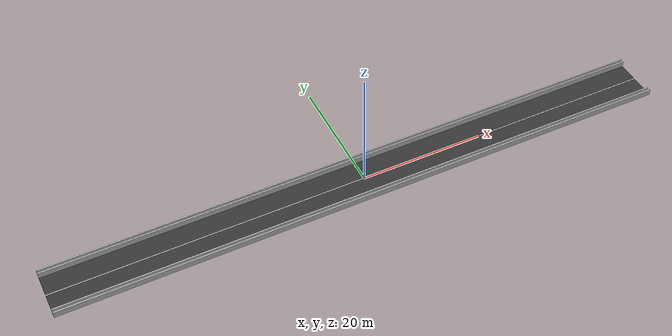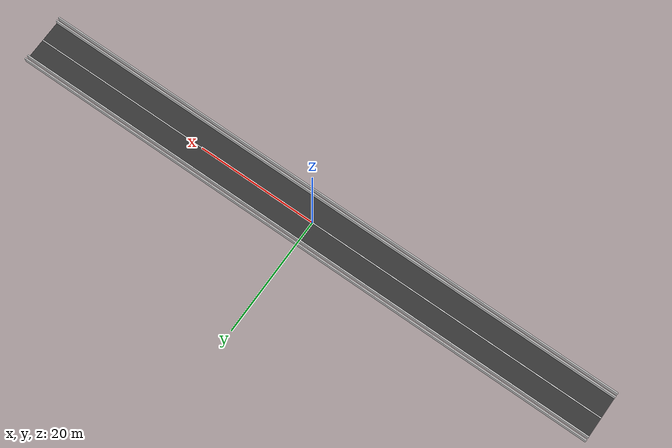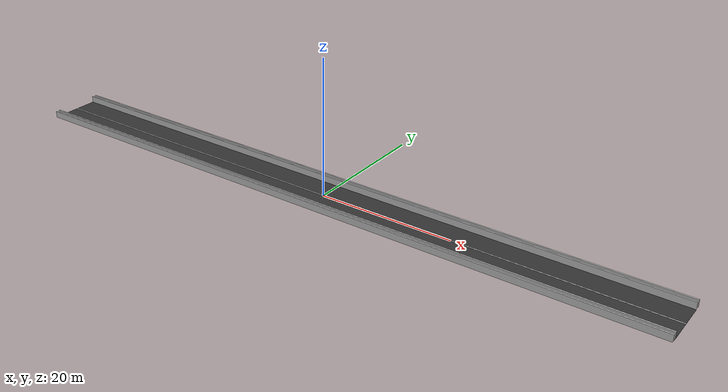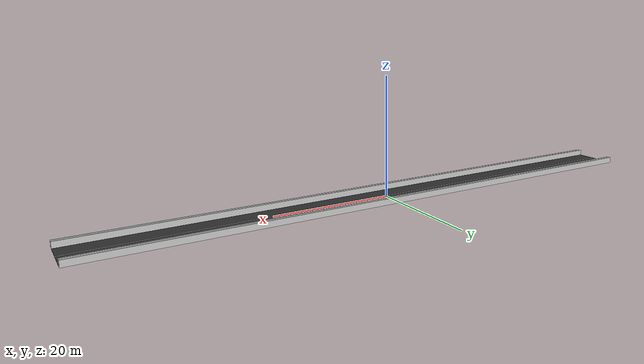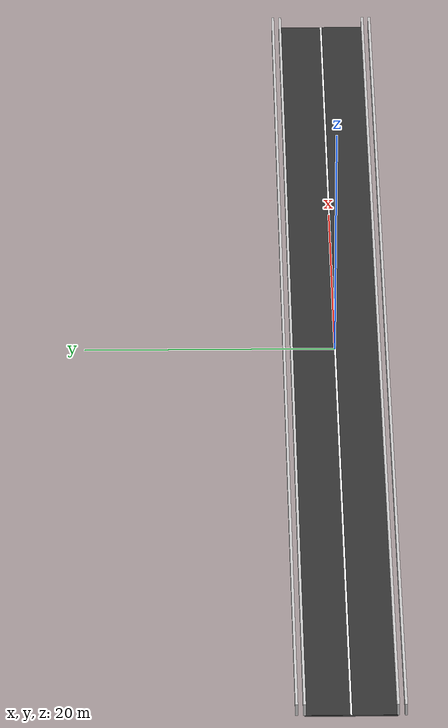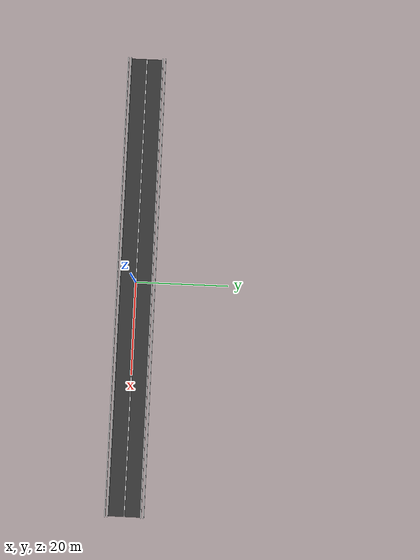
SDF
<?xml version="1.0"?>
<sdf version="1.6">
  <world name="road">
    <include>
      <uri>model://ground_plane</uri>
    </include>

    <include>
      <uri>model://sun</uri>
    </include>

    <scene>
      <ambient>0.4 0.4 0.4 1</ambient>
      <background>0.7 0.7 0.7 1</background>
      <shadows>true</shadows>
    </scene>

    <physics type="ode">
      <max_step_size>0.001</max_step_size>
      <real_time_factor>1</real_time_factor>
      <real_time_update_rate>1000</real_time_update_rate>
      <ode>
        <solver>
          <type>quick</type>
          <iters>150</iters>
          <precon_iters>0</precon_iters>
          <sor>1.400000</sor>
          <use_dynamic_moi_rescaling>1</use_dynamic_moi_rescaling>
        </solver>
        <constraints>
          <cfm>0.00001</cfm>
          <erp>0.2</erp>
          <contact_max_correcting_vel>2000.000000</contact_max_correcting_vel>
          <contact_surface_layer>0.01000</contact_surface_layer>
        </constraints>
      </ode>
    </physics>

    <!-- Road -->
    <model name="road">
      <static>true</static>
      <link name="link">
        <collision name="collision">
          <geometry>
            <plane>
              <normal>0 0 1</normal>
              <size>100 7</size>
            </plane>
          </geometry>
          <surface>
            <friction>
              <ode>
                <mu>100</mu>
                <mu2>50</mu2>
              </ode>
            </friction>
          </surface>
        </collision>
        <visual name="visual">
          <geometry>
            <plane>
              <normal>0 0 1</normal>
              <size>100 7</size>
            </plane>
          </geometry>
          <material>
            <ambient>0.2 0.2 0.2 1</ambient>
            <diffuse>0.2 0.2 0.2 1</diffuse>
          </material>
        </visual>
      </link>
    </model>

    <!-- Walls -->
    <model name="wall_right">
      <static>true</static>
      <pose>0 3.5 0.5 0 0 0</pose>
      <link name="link">
        <collision name="collision">
          <geometry>
            <box>
              <size>100 0.2 1</size>
            </box>
          </geometry>
        </collision>
        <visual name="visual">
          <geometry>
            <box>
              <size>100 0.2 1</size>
            </box>
          </geometry>
          <material>
            <ambient>0.8 0.8 0.8 1</ambient>
            <diffuse>0.8 0.8 0.8 1</diffuse>
          </material>
        </visual>
      </link>
    </model>

    <model name="wall_left">
      <static>true</static>
      <pose>0 -3.5 0.5 0 0 0</pose>
      <link name="link">
        <collision name="collision">
          <geometry>
            <box>
              <size>100 0.2 1</size>
            </box>
          </geometry>
        </collision>
        <visual name="visual">
          <geometry>
            <box>
              <size>100 0.2 1</size>
            </box>
          </geometry>
          <material>
            <ambient>0.8 0.8 0.8 1</ambient>
            <diffuse>0.8 0.8 0.8 1</diffuse>
          </material>
        </visual>
      </link>
    </model>

    <model name="road">
      <static>true</static>
      <pose>0 0 0.01 0 0 0</pose>
      <link name="link">
        <collision name="collision">
          <geometry>
            <box>
              <size>100 7 0.02</size>
            </box>
          </geometry>
        </collision>
        <visual name="visual">
          <geometry>
            <box>
              <size>100 7 0.02</size>
            </box>
          </geometry>
          <material>
            <ambient>0.2 0.2 0.2 1</ambient>
            <diffuse>0.2 0.2 0.2 1</diffuse>
            <specular>0.01 0.01 0.01 1</specular>
          </material>
        </visual>
      </link>
    </model>

    <model name="center_line">
      <static>true</static>
      <pose>0 0 0.021 0 0 0</pose>
      <link name="link">
        <visual name="visual">
          <geometry>
            <box>
              <size>100 0.15 0.002</size>
            </box>
          </geometry>
          <material>
            <ambient>1 1 1 1</ambient>
            <diffuse>1 1 1 1</diffuse>
            <specular>0.1 0.1 0.1 1</specular>
          </material>
        </visual>
      </link>
    </model>

    <model name="wall_right">
      <static>true</static>
      <pose>0 4.1 0.5 0 0 0</pose>
      <link name="link">
        <collision name="collision">
          <geometry>
            <box>
              <size>100 0.2 1</size>
            </box>
          </geometry>
        </collision>
        <visual name="visual">
          <geometry>
            <box>
              <size>100 0.2 1</size>
            </box>
          </geometry>
          <material>
            <ambient>0.8 0.8 0.8 1</ambient>
            <diffuse>0.8 0.8 0.8 1</diffuse>
            <specular>0.1 0.1 0.1 1</specular>
          </material>
        </visual>
      </link>
    </model>

    <model name="wall_left">
      <static>true</static>
      <pose>0 -4.1 0.5 0 0 0</pose>
      <link name="link">
        <collision name="collision">
          <geometry>
            <box>
              <size>100 0.2 1</size>
            </box>
          </geometry>
        </collision>
        <visual name="visual">
          <geometry>
            <box>
              <size>100 0.2 1</size>
            </box>
          </geometry>
          <material>
            <ambient>0.8 0.8 0.8 1</ambient>
            <diffuse>0.8 0.8 0.8 1</diffuse>
            <specular>0.1 0.1 0.1 1</specular>
          </material>
        </visual>
      </link>
    </model>

  </world>
</sdf>
